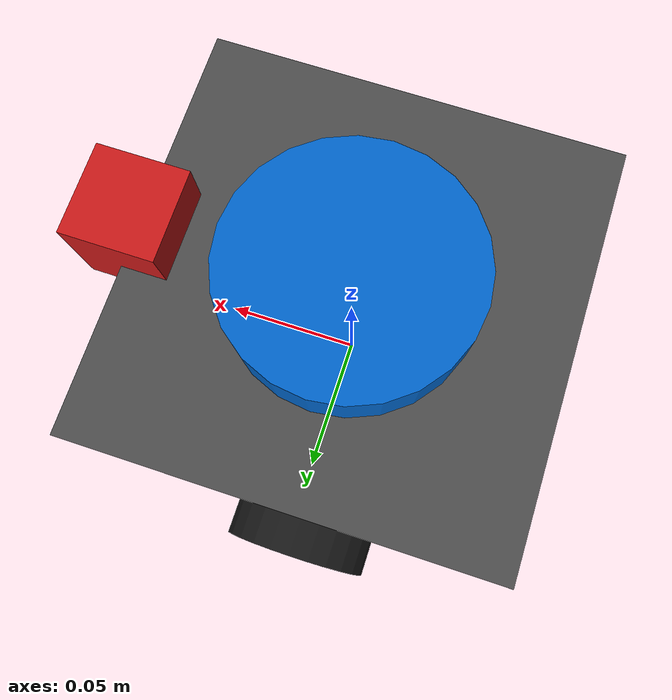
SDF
<?xml version="1.0"?>
<sdf version="1.9">
  <model name="hermes">

    <!-- ── base_link (cube body) ──────────────────────────────────────────── -->
    <link name="base_link">
      <inertial>
        <mass>5.0</mass>
        <!-- Solid cube: I = m·s²/6 = 5.0·0.1397²/6 ≈ 0.01627 each axis -->
        <inertia>
          <ixx>0.01627</ixx><ixy>0</ixy><ixz>0</ixz>
          <iyy>0.01627</iyy><iyz>0</iyz>
          <izz>0.01627</izz>
        </inertia>
      </inertial>
      <visual name="visual">
        <geometry>
          <box><size>0.1397 0.1397 0.1397</size></box>
        </geometry>
        <material>
          <ambient>0.3 0.3 0.3 1</ambient>
          <diffuse>0.3 0.3 0.3 1</diffuse>
        </material>
      </visual>
      <collision name="collision">
        <geometry>
          <box><size>0.1397 0.1397 0.1397</size></box>
        </geometry>
      </collision>
    </link>

    <!-- ── base_footprint (virtual, at ground level — child of base_link) ─── -->
    <!--   z offset = -(wheel_radius + body_size/2) = -0.1029 m              -->
    <link name="base_footprint">
      <pose relative_to="base_link">0 0 -0.1029 0 0 0</pose>
    </link>

    <joint name="base_footprint_joint" type="fixed">
      <parent>base_link</parent>
      <child>base_footprint</child>
    </joint>

    <!-- Left wheel  (y_reflect = +1) -->
    <link name="wheel_left_link">
      <pose relative_to="base_link">0 0.0788 -0.0699 1.5708 0 0</pose>
      <inertial>
        <mass>0.5</mass>
        <!-- Solid cylinder: Ixx=Iyy=m(3r²+h²)/12, Izz=mr²/2 -->
        <inertia>
          <ixx>0.000149</ixx><ixy>0</ixy><ixz>0</ixz>
          <iyy>0.000149</iyy><iyz>0</iyz>
          <izz>0.000272</izz>
        </inertia>
      </inertial>
      <visual name="visual">
        <geometry>
          <cylinder><radius>0.0330</radius><length>0.0178</length></cylinder>
        </geometry>
        <material>
          <ambient>0.1 0.1 0.1 1</ambient>
          <diffuse>0.1 0.1 0.1 1</diffuse>
        </material>
      </visual>
      <collision name="collision">
        <geometry>
          <cylinder><radius>0.0330</radius><length>0.0178</length></cylinder>
        </geometry>
        <surface>
          <friction><ode><mu>1.0</mu><mu2>1.0</mu2></ode></friction>
        </surface>
      </collision>
    </link>

    <joint name="wheel_left_joint" type="revolute">
      <parent>base_link</parent>
      <child>wheel_left_link</child>
      <axis>
        <xyz expressed_in="__model__">0 1 0</xyz>
        <limit><lower>-1e+16</lower><upper>1e+16</upper></limit>
      </axis>
    </joint>

    <!-- Right wheel  (y_reflect = -1) -->
    <link name="wheel_right_link">
      <!-- identical to wheel_left_link; y sign negated (y_reflect = -1) -->
      <pose relative_to="base_link">0 -0.0788 -0.0699 1.5708 0 0</pose>
      <inertial>
        <mass>0.5</mass>
        <inertia>
          <ixx>0.000149</ixx><ixy>0</ixy><ixz>0</ixz>
          <iyy>0.000149</iyy><iyz>0</iyz>
          <izz>0.000272</izz>
        </inertia>
      </inertial>
      <visual name="visual">
        <geometry>
          <cylinder><radius>0.0330</radius><length>0.0178</length></cylinder>
        </geometry>
        <material>
          <ambient>0.1 0.1 0.1 1</ambient>
          <diffuse>0.1 0.1 0.1 1</diffuse>
        </material>
      </visual>
      <collision name="collision">
        <geometry>
          <cylinder><radius>0.0330</radius><length>0.0178</length></cylinder>
        </geometry>
        <surface>
          <friction><ode><mu>1.0</mu><mu2>1.0</mu2></ode></friction>
        </surface>
      </collision>
    </link>

    <joint name="wheel_right_joint" type="revolute">
      <parent>base_link</parent>
      <child>wheel_right_link</child>
      <axis>
        <xyz expressed_in="__model__">0 1 0</xyz>
        <limit><lower>-1e+16</lower><upper>1e+16</upper></limit>
      </axis>
    </joint>

    <!-- ── Caster wheel (FRONT, passive, zero friction) ───────────────────── -->
    <!--   x  = body_size/2 - caster_radius = 0.0699 - 0.0165 = 0.0534 m    -->
    <!--   z  = caster_radius - body_z_spawn = 0.0165 - 0.1029 = -0.0864 m  -->
    <link name="caster_link">
      <pose relative_to="base_link">0.0534 0 -0.0864 0 0 0</pose>
      <inertial>
        <mass>0.1</mass>
        <!-- Solid sphere: I = 2mr²/5 -->
        <inertia>
          <ixx>0.00001</ixx><ixy>0</ixy><ixz>0</ixz>
          <iyy>0.00001</iyy><iyz>0</iyz>
          <izz>0.00001</izz>
        </inertia>
      </inertial>
      <visual name="visual">
        <geometry>
          <sphere><radius>0.0165</radius></sphere>
        </geometry>
        <material>
          <ambient>0.6 0.6 0.6 1</ambient>
          <diffuse>0.6 0.6 0.6 1</diffuse>
        </material>
      </visual>
      <collision name="collision">
        <geometry>
          <sphere><radius>0.0165</radius></sphere>
        </geometry>
        <surface>
          <friction><ode><mu>0.0</mu><mu2>0.0</mu2></ode></friction>
        </surface>
      </collision>
    </link>

    <joint name="caster_joint" type="fixed">
      <parent>base_link</parent>
      <child>caster_link</child>
    </joint>

    <!-- ── laser_frame (2-D LiDAR, on top of body) ───────────────────────── -->
    <!--   z = +body_size/2 = +0.0699 m relative to base_link centre         -->
    <!--   Absolute scan height = body_z_spawn + 0.0699 = 0.173 m AGL        -->
    <link name="laser_frame">
      <pose relative_to="base_link">0 0 0.0699 0 0 0</pose>
      <inertial>
        <mass>0.1</mass>
        <inertia>
          <ixx>0.00001</ixx><ixy>0</ixy><ixz>0</ixz>
          <iyy>0.00001</iyy><iyz>0</iyz>
          <izz>0.00001</izz>
        </inertia>
      </inertial>
      <visual name="visual">
        <geometry>
          <cylinder><radius>0.04</radius><length>0.04</length></cylinder>
        </geometry>
        <material>
          <ambient>0.0 0.4 0.8 1</ambient>
          <diffuse>0.0 0.4 0.8 1</diffuse>
        </material>
      </visual>
      <collision name="collision">
        <geometry>
          <cylinder><radius>0.04</radius><length>0.04</length></cylinder>
        </geometry>
      </collision>
      <!-- 2-D LiDAR (360°, 10 Hz, 12 m range) -->
      <sensor name="lidar" type="gpu_lidar">
        <topic>/scan</topic>
        <update_rate>10</update_rate>
        <always_on>true</always_on>
        <visualize>false</visualize>
        <lidar>
          <scan>
            <horizontal>
              <samples>360</samples>
              <resolution>1</resolution>
              <min_angle>-3.14159265</min_angle>
              <max_angle>3.14159265</max_angle>
            </horizontal>
          </scan>
          <range>
            <min>0.10</min>
            <max>12.0</max>
            <resolution>0.01</resolution>
          </range>
          <noise>
            <type>gaussian</type>
            <mean>0.0</mean>
            <stddev>0.01</stddev>
          </noise>
        </lidar>
      </sensor>
    </link>

    <joint name="laser_joint" type="fixed">
      <parent>base_link</parent>
      <child>laser_frame</child>
    </joint>

    <!-- ── camera_frame (front-top corner of body) ───────────────────────── -->
    <!--   x = body_size/2 = 0.0699 m (front face)                           -->
    <!--   z = body_size/2 = 0.0699 m (top face)                             -->
    <link name="camera_frame">
      <pose relative_to="base_link">0.0699 0 0.0699 0 0 0</pose>
      <inertial>
        <mass>0.05</mass>
        <inertia>
          <ixx>0.00001</ixx><ixy>0</ixy><ixz>0</ixz>
          <iyy>0.00001</iyy><iyz>0</iyz>
          <izz>0.00001</izz>
        </inertia>
      </inertial>
      <visual name="visual">
        <geometry>
          <box><size>0.03 0.03 0.03</size></box>
        </geometry>
        <material>
          <ambient>0.8 0.1 0.1 1</ambient>
          <diffuse>0.8 0.1 0.1 1</diffuse>
        </material>
      </visual>
    </link>

    <joint name="camera_joint" type="fixed">
      <parent>base_link</parent>
      <child>camera_frame</child>
    </joint>

    <!-- ══════════════════════════════════════════════════════════════════════
         Gazebo Harmonic (gz-sim) plugins
         ══════════════════════════════════════════════════════════════════════ -->

    <!-- Differential drive controller -->
    <plugin filename="gz-sim-diff-drive-system"
            name="gz::sim::systems::DiffDrive">
      <left_joint>wheel_left_joint</left_joint>
      <right_joint>wheel_right_joint</right_joint>
      <wheel_separation>0.1575</wheel_separation>
      <wheel_radius>0.0330</wheel_radius>
      <odom_publish_frequency>20</odom_publish_frequency>
      <topic>cmd_vel</topic>
      <odom_topic>odom</odom_topic>
      <tf_topic>tf</tf_topic>
      <frame_id>odom</frame_id>
      <child_frame_id>base_footprint</child_frame_id>
      <min_velocity>-0.5</min_velocity>
      <max_velocity>0.5</max_velocity>
      <min_acceleration>-1.0</min_acceleration>
      <max_acceleration>1.0</max_acceleration>
    </plugin>

    <!-- Joint state publisher for wheel joints -->
    <plugin filename="gz-sim-joint-state-publisher-system"
            name="gz::sim::systems::JointStatePublisher">
      <topic>joint_states</topic>
      <joint_name>wheel_left_joint</joint_name>
      <joint_name>wheel_right_joint</joint_name>
    </plugin>

  </model>
</sdf>
